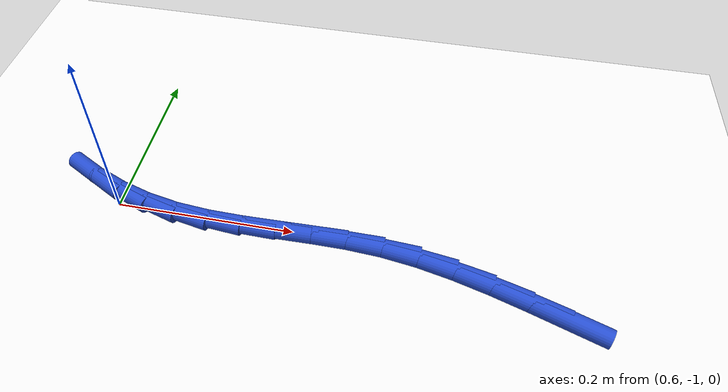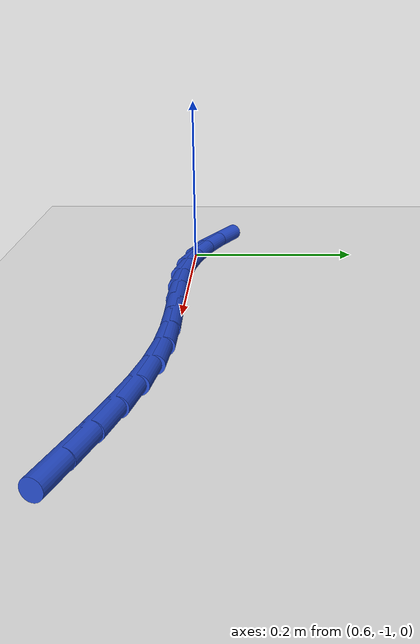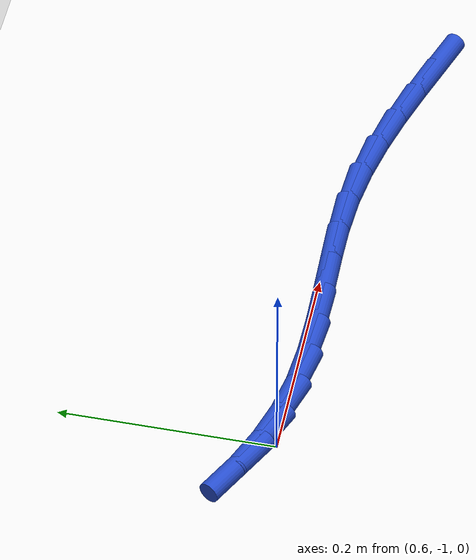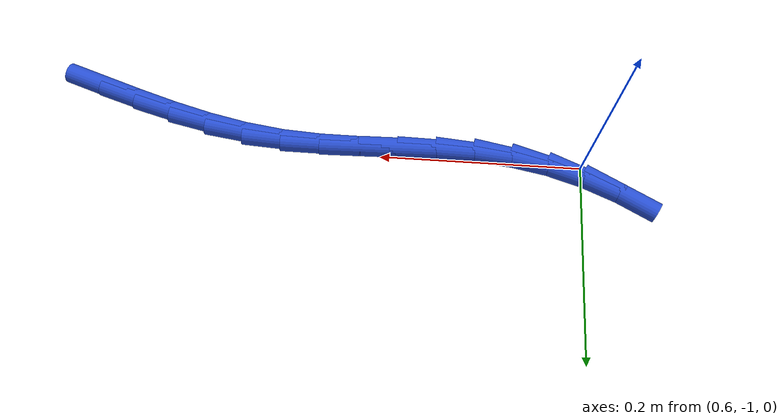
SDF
<sdf version="1.6">
 <world name="default">
  <model name="ground_plane">
   <static>1</static>
   <link name="link">
    <collision name="collision">
     <geometry><plane><normal>0 0 1</normal><size>100 100</size></plane></geometry>
     <surface><friction><ode><mu>100</mu><mu2>50</mu2></ode></friction></surface>
    </collision>
    <visual name="visual">
     <cast_shadows>0</cast_shadows>
     <geometry><plane><normal>0 0 1</normal><size>100 100</size></plane></geometry>
     <material>
      <script><uri>file://media/materials/scripts/gazebo.material</uri><name>Gazebo/WhiteGlow</name></script>
     </material>
    </visual>
   </link>
  </model>
  <model name="line">
   <link name="link_136">
    <pose>1.0872387461761424 -1.0580646133541172 0.01 0 1.57 -0.3307325934585394</pose>
    <collision name="collision">
     <geometry><cylinder><radius>0.01</radius><length>0.08</length></cylinder></geometry>
    </collision>
    <visual name="visual">
     <material>
      <script><name>Gazebo/Blue</name><uri>file://media/materials/scripts/gazebo.material</uri></script>
     </material>
     <geometry><cylinder><radius>0.01</radius><length>0.08</length></cylinder></geometry>
    </visual>
   </link>
   <link name="link_137">
    <pose>1.050090425805868 -1.0453099746780594 0.01 0 1.57 -0.3102500039975654</pose>
    <collision name="collision">
     <geometry><cylinder><radius>0.01</radius><length>0.08</length></cylinder></geometry>
    </collision>
    <visual name="visual">
     <material>
      <script><name>Gazebo/Blue</name><uri>file://media/materials/scripts/gazebo.material</uri></script>
     </material>
     <geometry><cylinder><radius>0.01</radius><length>0.08</length></cylinder></geometry>
    </visual>
   </link>
   <link name="link_138">
    <pose>1.0127166340807539 -1.0333278180529737 0.01 0 1.57 -0.27269660300495874</pose>
    <collision name="collision">
     <geometry><cylinder><radius>0.01</radius><length>0.08</length></cylinder></geometry>
    </collision>
    <visual name="visual">
     <material>
      <script><name>Gazebo/Blue</name><uri>file://media/materials/scripts/gazebo.material</uri></script>
     </material>
     <geometry><cylinder><radius>0.01</radius><length>0.08</length></cylinder></geometry>
    </visual>
   </link>
   <link name="link_139">
    <pose>0.9750708515806357 -1.0227996682393448 0.01 0 1.57 -0.21756696297485953</pose>
    <collision name="collision">
     <geometry><cylinder><radius>0.01</radius><length>0.08</length></cylinder></geometry>
    </collision>
    <visual name="visual">
     <material>
      <script><name>Gazebo/Blue</name><uri>file://media/materials/scripts/gazebo.material</uri></script>
     </material>
     <geometry><cylinder><radius>0.01</radius><length>0.08</length></cylinder></geometry>
    </visual>
   </link>
   <link name="link_140">
    <pose>0.9371065588853498 -1.0144070499976585 0.01 0 1.57 -0.1444516068293377</pose>
    <collision name="collision">
     <geometry><cylinder><radius>0.01</radius><length>0.08</length></cylinder></geometry>
    </collision>
    <visual name="visual">
     <material>
      <script><name>Gazebo/Blue</name><uri>file://media/materials/scripts/gazebo.material</uri></script>
     </material>
     <geometry><cylinder><radius>0.01</radius><length>0.08</length></cylinder></geometry>
    </visual>
   </link>
   <link name="link_141">
    <pose>0.8987772372940798 -1.0088314834311627 0.01 0 1.57 -0.06236192708340401</pose>
    <collision name="collision">
     <geometry><cylinder><radius>0.01</radius><length>0.08</length></cylinder></geometry>
    </collision>
    <visual name="visual">
     <material>
      <script><name>Gazebo/Blue</name><uri>file://media/materials/scripts/gazebo.material</uri></script>
     </material>
     <geometry><cylinder><radius>0.01</radius><length>0.08</length></cylinder></geometry>
    </visual>
   </link>
   <link name="link_142">
    <pose>0.8600887029932 -1.006415659342568 0.01 0 1.57 -0.004442271133101755</pose>
    <collision name="collision">
     <geometry><cylinder><radius>0.01</radius><length>0.08</length></cylinder></geometry>
    </collision>
    <visual name="visual">
     <material>
      <script><name>Gazebo/Blue</name><uri>file://media/materials/scripts/gazebo.material</uri></script>
     </material>
     <geometry><cylinder><radius>0.01</radius><length>0.08</length></cylinder></geometry>
    </visual>
   </link>
   <link name="link_143">
    <pose>0.8212412627441554 -1.0062430873449877 0.01 0 1.57 0.02222871130980114</pose>
    <collision name="collision">
     <geometry><cylinder><radius>0.01</radius><length>0.08</length></cylinder></geometry>
    </collision>
    <visual name="visual">
     <material>
      <script><name>Gazebo/Blue</name><uri>file://media/materials/scripts/gazebo.material</uri></script>
     </material>
     <geometry><cylinder><radius>0.01</radius><length>0.08</length></cylinder></geometry>
    </visual>
   </link>
   <link name="link_144">
    <pose>0.782480393553718 -1.0071048334550818 0.01 0 1.57 0.017878691033953308</pose>
    <collision name="collision">
     <geometry><cylinder><radius>0.01</radius><length>0.08</length></cylinder></geometry>
    </collision>
    <visual name="visual">
     <material>
      <script><name>Gazebo/Blue</name><uri>file://media/materials/scripts/gazebo.material</uri></script>
     </material>
     <geometry><cylinder><radius>0.01</radius><length>0.08</length></cylinder></geometry>
    </visual>
   </link>
   <link name="link_145">
    <pose>0.7440515724286614 -1.0077919636895112 0.01 0 1.57 -0.018396755985960463</pose>
    <collision name="collision">
     <geometry><cylinder><radius>0.01</radius><length>0.08</length></cylinder></geometry>
    </collision>
    <visual name="visual">
     <material>
      <script><name>Gazebo/Blue</name><uri>file://media/materials/scripts/gazebo.material</uri></script>
     </material>
     <geometry><cylinder><radius>0.01</radius><length>0.08</length></cylinder></geometry>
    </visual>
   </link>
   <link name="link_146">
    <pose>0.7062002763757579 -1.0070955440649352 0.01 0 1.57 -0.08858888296789394</pose>
    <collision name="collision">
     <geometry><cylinder><radius>0.01</radius><length>0.08</length></cylinder></geometry>
    </collision>
    <visual name="visual">
     <material>
      <script><name>Gazebo/Blue</name><uri>file://media/materials/scripts/gazebo.material</uri></script>
     </material>
     <geometry><cylinder><radius>0.01</radius><length>0.08</length></cylinder></geometry>
    </visual>
   </link>
   <link name="link_147">
    <pose>0.6691719824017813 -1.0038066405980148 0.01 0 1.57 -0.1910376646948952</pose>
    <collision name="collision">
     <geometry><cylinder><radius>0.01</radius><length>0.08</length></cylinder></geometry>
    </collision>
    <visual name="visual">
     <material>
      <script><name>Gazebo/Blue</name><uri>file://media/materials/scripts/gazebo.material</uri></script>
     </material>
     <geometry><cylinder><radius>0.01</radius><length>0.08</length></cylinder></geometry>
    </visual>
   </link>
   <link name="link_148">
    <pose>0.6331881343400653 -0.9968475048120129 0.01 0 1.57 -0.2989433024306132</pose>
    <collision name="collision">
     <geometry><cylinder><radius>0.01</radius><length>0.08</length></cylinder></geometry>
    </collision>
    <visual name="visual">
     <material>
      <script><name>Gazebo/Blue</name><uri>file://media/materials/scripts/gazebo.material</uri></script>
     </material>
     <geometry><cylinder><radius>0.01</radius><length>0.08</length></cylinder></geometry>
    </visual>
   </link>
   <link name="link_149">
    <pose>0.5982954178634409 -0.9860943087716474 0.01 0 1.57 -0.3986346273005474</pose>
    <collision name="collision">
     <geometry><cylinder><radius>0.01</radius><length>0.08</length></cylinder></geometry>
    </collision>
    <visual name="visual">
     <material>
      <script><name>Gazebo/Blue</name><uri>file://media/materials/scripts/gazebo.material</uri></script>
     </material>
     <geometry><cylinder><radius>0.01</radius><length>0.08</length></cylinder></geometry>
    </visual>
   </link>
   <link name="link_150">
    <pose>0.5644632975835544 -0.9718447370837743 0.01 0 1.57 -0.48881231446988843</pose>
    <collision name="collision">
     <geometry><cylinder><radius>0.01</radius><length>0.08</length></cylinder></geometry>
    </collision>
    <visual name="visual">
     <material>
      <script><name>Gazebo/Blue</name><uri>file://media/materials/scripts/gazebo.material</uri></script>
     </material>
     <geometry><cylinder><radius>0.01</radius><length>0.08</length></cylinder></geometry>
    </visual>
   </link>
  </model>
 </world>
</sdf>
